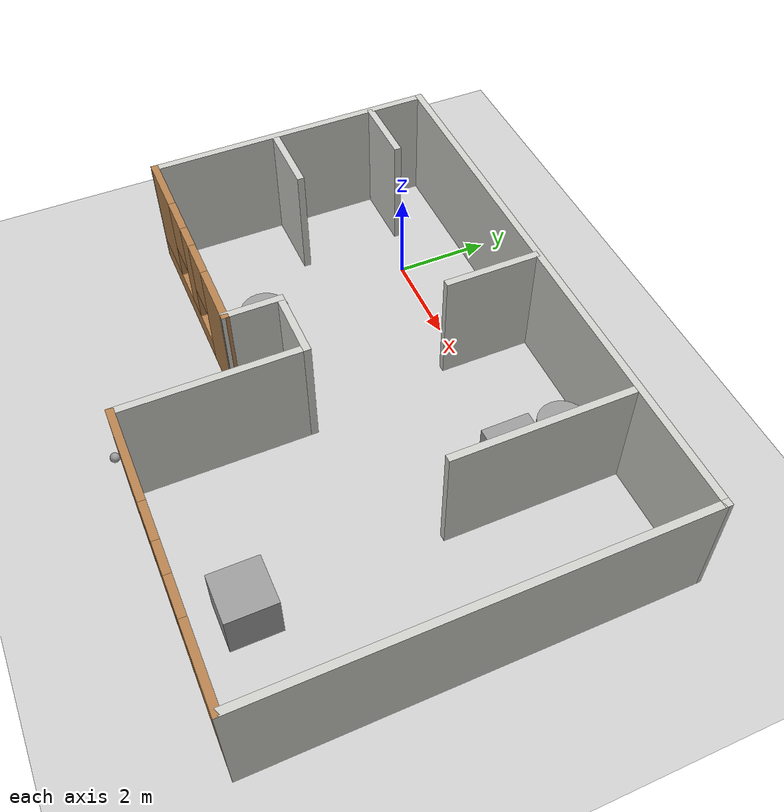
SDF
<sdf version="1.6">
 <world name="default">
  <plugin name="hello" filename="libhello.so"/>
  <light name="sun" type="directional">
   <pose>0 0 10 0 -0 0</pose>
   <diffuse>0.8 0.8 0.8 1</diffuse>
   <specular>0.2 0.2 0.2 1</specular>
   <attenuation>
    <range>1000</range>
    <constant>0.9</constant>
    <linear>0.01</linear>
    <quadratic>0.001</quadratic>
   </attenuation>
   <direction>-0.5 0.1 -0.9</direction>
  </light>
  <model name="ground_plane">
   <static>1</static>
   <link name="link">
    <collision name="collision">
     <geometry><plane><normal>0 0 1</normal><size>100 100</size></plane></geometry>
     <surface><friction><ode><mu>100</mu><mu2>50</mu2></ode></friction></surface>
    </collision>
    <visual name="visual">
     <cast_shadows>0</cast_shadows>
     <geometry><plane><normal>0 0 1</normal><size>100 100</size></plane></geometry>
     <material>
      <script><uri>file://media/materials/scripts/gazebo.material</uri><name>Gazebo/Grey</name></script>
     </material>
    </visual>
   </link>
  </model>
  <gravity>0 0 -9.8</gravity>
  <magnetic_field>6e-06 2.3e-05 -4.2e-05</magnetic_field>
  <atmosphere type="adiabatic"/>
  <physics name="default_physics" default="0" type="ode">
   <max_step_size>0.001</max_step_size>
   <real_time_factor>1</real_time_factor>
   <real_time_update_rate>1000</real_time_update_rate>
  </physics>
  <scene><ambient>0.4 0.4 0.4 1</ambient><background>0.7 0.7 0.7 1</background><shadows>1</shadows></scene>
  <spherical_coordinates>
   <surface_model>EARTH_WGS84</surface_model>
   <latitude_deg>0</latitude_deg>
   <longitude_deg>0</longitude_deg>
   <elevation>0</elevation>
   <heading_deg>0</heading_deg>
  </spherical_coordinates>
  <model name="my_ball">
   <link name="link_0">
    <inertial>
     <mass>1</mass>
     <inertia><ixx>0.1</ixx><ixy>0</ixy><ixz>0</ixz><iyy>0.1</iyy><iyz>0</iyz><izz>0.1</izz></inertia>
    </inertial>
    <visual name="visual">
     <geometry><sphere><radius>0.1</radius></sphere></geometry>
     <material>
      <lighting>1</lighting>
      <script><uri>file://media/materials/scripts/gazebo.material</uri><name>Gazebo/Grey</name></script>
      <ambient>1 1 1 1</ambient>
      <diffuse>1 1 1 1</diffuse>
      <specular>1 1 1 1</specular>
      <emissive>1 1 1 1</emissive>
      <shader type="vertex"><normal_map>__default__</normal_map></shader>
     </material>
    </visual>
    <collision name="collision">
     <geometry><sphere><radius>0.1</radius></sphere></geometry>
     <surface>
      <friction>
       <ode><mu>1</mu><mu2>1</mu2><fdir1>0 0 0</fdir1><slip1>0</slip1><slip2>0</slip2></ode>
       <torsional>
        <coefficient>1</coefficient>
        <patch_radius>0</patch_radius>
        <surface_radius>0</surface_radius>
        <use_patch_radius>1</use_patch_radius>
        <ode><slip>0</slip></ode>
       </torsional>
      </friction>
      <bounce><restitution_coefficient>0</restitution_coefficient><threshold>1e+06</threshold></bounce>
      <contact>
       <collide_without_contact>0</collide_without_contact>
       <collide_without_contact_bitmask>1</collide_without_contact_bitmask>
       <collide_bitmask>1</collide_bitmask>
       <ode>
        <soft_cfm>0</soft_cfm>
        <soft_erp>0.2</soft_erp>
        <kp>1e+13</kp>
        <kd>1</kd>
        <max_vel>0.01</max_vel>
        <min_depth>0</min_depth>
       </ode>
       <bullet>
        <split_impulse>1</split_impulse>
        <split_impulse_penetration_threshold>-0.01</split_impulse_penetration_threshold>
        <soft_cfm>0</soft_cfm>
        <soft_erp>0.2</soft_erp>
        <kp>1e+13</kp>
        <kd>1</kd>
       </bullet>
      </contact>
     </surface>
    </collision>
   </link>
   <static>0</static>
   <pose>2.51322 -7.20324 0.1 0 -0 0</pose>
  </model>
  <model name="Building">
   <link name="Wall_26">
    <pose>-0.000176 4.29996 0 0 0 -0.000586</pose>
    <visual name="Wall_26_Visual">
     <pose>0 0 1.25 0 -0 0</pose>
     <geometry><box><size>11.9548 0.15 2.5</size></box></geometry>
     <material>
      <script><uri>file://media/materials/scripts/gazebo.material</uri><name>Gazebo/CeilingTiled</name></script>
      <ambient>1 1 1 1</ambient>
      <shader type="pixel"/>
      <diffuse>1 1 1 1</diffuse>
      <specular>0 0 0 1</specular>
      <emissive>0 0 0 1</emissive>
     </material>
     <meta><layer>0</layer></meta>
    </visual>
    <collision name="Wall_26_Collision">
     <pose>0 0 1.25 0 -0 0</pose>
     <geometry><box><size>11.9548 0.15 2.5</size></box></geometry>
     <surface>
      <friction>
       <ode><mu>1</mu><mu2>1</mu2><fdir1>0 0 0</fdir1><slip1>0</slip1><slip2>0</slip2></ode>
       <torsional>
        <coefficient>1</coefficient>
        <patch_radius>0</patch_radius>
        <surface_radius>0</surface_radius>
        <use_patch_radius>1</use_patch_radius>
        <ode><slip>0</slip></ode>
       </torsional>
      </friction>
      <bounce><restitution_coefficient>0</restitution_coefficient><threshold>1e+06</threshold></bounce>
      <contact>
       <collide_without_contact>0</collide_without_contact>
       <collide_without_contact_bitmask>1</collide_without_contact_bitmask>
       <collide_bitmask>1</collide_bitmask>
       <ode>
        <soft_cfm>0</soft_cfm>
        <soft_erp>0.2</soft_erp>
        <kp>1e+13</kp>
        <kd>1</kd>
        <max_vel>0.01</max_vel>
        <min_depth>0</min_depth>
       </ode>
       <bullet>
        <split_impulse>1</split_impulse>
        <split_impulse_penetration_threshold>-0.01</split_impulse_penetration_threshold>
        <soft_cfm>0</soft_cfm>
        <soft_erp>0.2</soft_erp>
        <kp>1e+13</kp>
        <kd>1</kd>
       </bullet>
      </contact>
     </surface>
    </collision>
   </link>
   <link name="Wall_27">
    <pose>5.90246 -0.003458 0 0 0 -1.57074</pose>
    <visual name="Wall_27_Visual">
     <pose>0 0 1.25 0 -0 0</pose>
     <geometry><box><size>8.75 0.15 2.5</size></box></geometry>
     <material>
      <script><uri>file://media/materials/scripts/gazebo.material</uri><name>Gazebo/CeilingTiled</name></script>
      <ambient>1 1 1 1</ambient>
      <shader type="pixel"/>
      <diffuse>1 1 1 1</diffuse>
      <specular>0 0 0 1</specular>
      <emissive>0 0 0 1</emissive>
     </material>
     <meta><layer>0</layer></meta>
    </visual>
    <collision name="Wall_27_Collision">
     <pose>0 0 1.25 0 -0 0</pose>
     <geometry><box><size>8.75 0.15 2.5</size></box></geometry>
     <surface>
      <friction>
       <ode><mu>1</mu><mu2>1</mu2><fdir1>0 0 0</fdir1><slip1>0</slip1><slip2>0</slip2></ode>
       <torsional>
        <coefficient>1</coefficient>
        <patch_radius>0</patch_radius>
        <surface_radius>0</surface_radius>
        <use_patch_radius>1</use_patch_radius>
        <ode><slip>0</slip></ode>
       </torsional>
      </friction>
      <bounce><restitution_coefficient>0</restitution_coefficient><threshold>1e+06</threshold></bounce>
      <contact>
       <collide_without_contact>0</collide_without_contact>
       <collide_without_contact_bitmask>1</collide_without_contact_bitmask>
       <collide_bitmask>1</collide_bitmask>
       <ode>
        <soft_cfm>0</soft_cfm>
        <soft_erp>0.2</soft_erp>
        <kp>1e+13</kp>
        <kd>1</kd>
        <max_vel>0.01</max_vel>
        <min_depth>0</min_depth>
       </ode>
       <bullet>
        <split_impulse>1</split_impulse>
        <split_impulse_penetration_threshold>-0.01</split_impulse_penetration_threshold>
        <soft_cfm>0</soft_cfm>
        <soft_erp>0.2</soft_erp>
        <kp>1e+13</kp>
        <kd>1</kd>
       </bullet>
      </contact>
     </surface>
    </collision>
   </link>
   <link name="Wall_28">
    <pose>2.97769 -4.30342 0 0 -0 3.14159</pose>
    <visual name="Wall_28_Visual_0">
     <pose>-2.16132 0 1.25 0 -0 0</pose>
     <geometry><box><size>1.67735 0.15 2.5</size></box></geometry>
     <material>
      <script><uri>file://media/materials/scripts/gazebo.material</uri><name>Gazebo/Wood</name></script>
      <ambient>1 1 1 1</ambient>
      <shader type="pixel"/>
      <diffuse>1 1 1 1</diffuse>
      <specular>0.2 0.2 0.2 1</specular>
      <emissive>0 0 0 1</emissive>
     </material>
     <meta><layer>0</layer></meta>
    </visual>
    <visual name="Wall_28_Visual_1">
     <pose>0.838676 0 0.25 0 -0 0</pose>
     <geometry><box><size>4.32265 0.15 0.5</size></box></geometry>
     <material>
      <script><uri>file://media/materials/scripts/gazebo.material</uri><name>Gazebo/Wood</name></script>
      <ambient>1 1 1 1</ambient>
      <shader type="pixel"/>
      <diffuse>1 1 1 1</diffuse>
      <specular>0.2 0.2 0.2 1</specular>
      <emissive>0 0 0 1</emissive>
     </material>
     <meta><layer>0</layer></meta>
    </visual>
    <visual name="Wall_28_Visual_2">
     <pose>-0.194936 0 1.5 0 -0 0</pose>
     <geometry><box><size>0.655424 0.15 2</size></box></geometry>
     <material>
      <script><uri>file://media/materials/scripts/gazebo.material</uri><name>Gazebo/Wood</name></script>
      <ambient>1 1 1 1</ambient>
      <shader type="pixel"/>
      <diffuse>1 1 1 1</diffuse>
      <specular>0.2 0.2 0.2 1</specular>
      <emissive>0 0 0 1</emissive>
     </material>
     <meta><layer>0</layer></meta>
    </visual>
    <visual name="Wall_28_Visual_3">
     <pose>1.96639 0 1.5 0 -0 0</pose>
     <geometry><box><size>2.06722 0.15 2</size></box></geometry>
     <material>
      <script><uri>file://media/materials/scripts/gazebo.material</uri><name>Gazebo/Wood</name></script>
      <ambient>1 1 1 1</ambient>
      <shader type="pixel"/>
      <diffuse>1 1 1 1</diffuse>
      <specular>0.2 0.2 0.2 1</specular>
      <emissive>0 0 0 1</emissive>
     </material>
     <meta><layer>0</layer></meta>
    </visual>
    <visual name="Wall_28_Visual_4">
     <pose>-0.922648 0 1.9 0 -0 0</pose>
     <geometry><box><size>0.8 0.15 1.2</size></box></geometry>
     <material>
      <script><uri>file://media/materials/scripts/gazebo.material</uri><name>Gazebo/Wood</name></script>
      <ambient>1 1 1 1</ambient>
      <shader type="pixel"/>
      <diffuse>1 1 1 1</diffuse>
      <specular>0.2 0.2 0.2 1</specular>
      <emissive>0 0 0 1</emissive>
     </material>
     <meta><layer>0</layer></meta>
    </visual>
    <visual name="Wall_28_Visual_5">
     <pose>0.532776 0 1.9 0 -0 0</pose>
     <geometry><box><size>0.8 0.15 1.2</size></box></geometry>
     <material>
      <script><uri>file://media/materials/scripts/gazebo.material</uri><name>Gazebo/Wood</name></script>
      <ambient>1 1 1 1</ambient>
      <shader type="pixel"/>
      <diffuse>1 1 1 1</diffuse>
      <specular>0.2 0.2 0.2 1</specular>
      <emissive>0 0 0 1</emissive>
     </material>
     <meta><layer>0</layer></meta>
    </visual>
    <collision name="Wall_28_Collision_0">
     <pose>-2.16132 0 1.25 0 -0 0</pose>
     <geometry><box><size>1.67735 0.15 2.5</size></box></geometry>
     <surface>
      <friction>
       <ode><mu>1</mu><mu2>1</mu2><fdir1>0 0 0</fdir1><slip1>0</slip1><slip2>0</slip2></ode>
       <torsional>
        <coefficient>1</coefficient>
        <patch_radius>0</patch_radius>
        <surface_radius>0</surface_radius>
        <use_patch_radius>1</use_patch_radius>
        <ode><slip>0</slip></ode>
       </torsional>
      </friction>
      <bounce><restitution_coefficient>0</restitution_coefficient><threshold>1e+06</threshold></bounce>
      <contact>
       <collide_without_contact>0</collide_without_contact>
       <collide_without_contact_bitmask>1</collide_without_contact_bitmask>
       <collide_bitmask>1</collide_bitmask>
       <ode>
        <soft_cfm>0</soft_cfm>
        <soft_erp>0.2</soft_erp>
        <kp>1e+13</kp>
        <kd>1</kd>
        <max_vel>0.01</max_vel>
        <min_depth>0</min_depth>
       </ode>
       <bullet>
        <split_impulse>1</split_impulse>
        <split_impulse_penetration_threshold>-0.01</split_impulse_penetration_threshold>
        <soft_cfm>0</soft_cfm>
        <soft_erp>0.2</soft_erp>
        <kp>1e+13</kp>
        <kd>1</kd>
       </bullet>
      </contact>
     </surface>
    </collision>
    <collision name="Wall_28_Collision_1">
     <pose>0.838676 0 0.25 0 -0 0</pose>
     <geometry><box><size>4.32265 0.15 0.5</size></box></geometry>
     <surface>
      <friction>
       <ode><mu>1</mu><mu2>1</mu2><fdir1>0 0 0</fdir1><slip1>0</slip1><slip2>0</slip2></ode>
       <torsional>
        <coefficient>1</coefficient>
        <patch_radius>0</patch_radius>
        <surface_radius>0</surface_radius>
        <use_patch_radius>1</use_patch_radius>
        <ode><slip>0</slip></ode>
       </torsional>
      </friction>
      <bounce><restitution_coefficient>0</restitution_coefficient><threshold>1e+06</threshold></bounce>
      <contact>
       <collide_without_contact>0</collide_without_contact>
       <collide_without_contact_bitmask>1</collide_without_contact_bitmask>
       <collide_bitmask>1</collide_bitmask>
       <ode>
        <soft_cfm>0</soft_cfm>
        <soft_erp>0.2</soft_erp>
        <kp>1e+13</kp>
        <kd>1</kd>
        <max_vel>0.01</max_vel>
        <min_depth>0</min_depth>
       </ode>
       <bullet>
        <split_impulse>1</split_impulse>
        <split_impulse_penetration_threshold>-0.01</split_impulse_penetration_threshold>
        <soft_cfm>0</soft_cfm>
        <soft_erp>0.2</soft_erp>
        <kp>1e+13</kp>
        <kd>1</kd>
       </bullet>
      </contact>
     </surface>
    </collision>
    <collision name="Wall_28_Collision_3">
     <pose>1.96639 0 1.5 0 -0 0</pose>
     <geometry><box><size>2.06722 0.15 2</size></box></geometry>
     <surface>
      <friction>
       <ode><mu>1</mu><mu2>1</mu2><fdir1>0 0 0</fdir1><slip1>0</slip1><slip2>0</slip2></ode>
       <torsional>
        <coefficient>1</coefficient>
        <patch_radius>0</patch_radius>
        <surface_radius>0</surface_radius>
        <use_patch_radius>1</use_patch_radius>
        <ode><slip>0</slip></ode>
       </torsional>
      </friction>
      <bounce><restitution_coefficient>0</restitution_coefficient><threshold>1e+06</threshold></bounce>
      <contact>
       <collide_without_contact>0</collide_without_contact>
       <collide_without_contact_bitmask>1</collide_without_contact_bitmask>
       <collide_bitmask>1</collide_bitmask>
       <ode>
        <soft_cfm>0</soft_cfm>
        <soft_erp>0.2</soft_erp>
        <kp>1e+13</kp>
        <kd>1</kd>
        <max_vel>0.01</max_vel>
        <min_depth>0</min_depth>
       </ode>
       <bullet>
        <split_impulse>1</split_impulse>
        <split_impulse_penetration_threshold>-0.01</split_impulse_penetration_threshold>
        <soft_cfm>0</soft_cfm>
        <soft_erp>0.2</soft_erp>
        <kp>1e+13</kp>
        <kd>1</kd>
       </bullet>
      </contact>
     </surface>
    </collision>
    <collision name="Wall_28_Collision_2">
     <pose>-0.194936 0 1.5 0 -0 0</pose>
     <geometry><box><size>0.655424 0.15 2</size></box></geometry>
     <surface>
      <friction>
       <ode><mu>1</mu><mu2>1</mu2><fdir1>0 0 0</fdir1><slip1>0</slip1><slip2>0</slip2></ode>
       <torsional>
        <coefficient>1</coefficient>
        <patch_radius>0</patch_radius>
        <surface_radius>0</surface_radius>
        <use_patch_radius>1</use_patch_radius>
        <ode><slip>0</slip></ode>
       </torsional>
      </friction>
      <bounce><restitution_coefficient>0</restitution_coefficient><threshold>1e+06</threshold></bounce>
      <contact>
       <collide_without_contact>0</collide_without_contact>
       <collide_without_contact_bitmask>1</collide_without_contact_bitmask>
       <collide_bitmask>1</collide_bitmask>
       <ode>
        <soft_cfm>0</soft_cfm>
        <soft_erp>0.2</soft_erp>
        <kp>1e+13</kp>
        <kd>1</kd>
        <max_vel>0.01</max_vel>
        <min_depth>0</min_depth>
       </ode>
       <bullet>
        <split_impulse>1</split_impulse>
        <split_impulse_penetration_threshold>-0.01</split_impulse_penetration_threshold>
        <soft_cfm>0</soft_cfm>
        <soft_erp>0.2</soft_erp>
        <kp>1e+13</kp>
        <kd>1</kd>
       </bullet>
      </contact>
     </surface>
    </collision>
    <collision name="Wall_28_Collision_4">
     <pose>-0.922648 0 1.9 0 -0 0</pose>
     <geometry><box><size>0.8 0.15 1.2</size></box></geometry>
     <surface>
      <friction>
       <ode><mu>1</mu><mu2>1</mu2><fdir1>0 0 0</fdir1><slip1>0</slip1><slip2>0</slip2></ode>
       <torsional>
        <coefficient>1</coefficient>
        <patch_radius>0</patch_radius>
        <surface_radius>0</surface_radius>
        <use_patch_radius>1</use_patch_radius>
        <ode><slip>0</slip></ode>
       </torsional>
      </friction>
      <bounce><restitution_coefficient>0</restitution_coefficient><threshold>1e+06</threshold></bounce>
      <contact>
       <collide_without_contact>0</collide_without_contact>
       <collide_without_contact_bitmask>1</collide_without_contact_bitmask>
       <collide_bitmask>1</collide_bitmask>
       <ode>
        <soft_cfm>0</soft_cfm>
        <soft_erp>0.2</soft_erp>
        <kp>1e+13</kp>
        <kd>1</kd>
        <max_vel>0.01</max_vel>
        <min_depth>0</min_depth>
       </ode>
       <bullet>
        <split_impulse>1</split_impulse>
        <split_impulse_penetration_threshold>-0.01</split_impulse_penetration_threshold>
        <soft_cfm>0</soft_cfm>
        <soft_erp>0.2</soft_erp>
        <kp>1e+13</kp>
        <kd>1</kd>
       </bullet>
      </contact>
     </surface>
    </collision>
    <collision name="Wall_28_Collision_5">
     <pose>0.532776 0 1.9 0 -0 0</pose>
     <geometry><box><size>0.8 0.15 1.2</size></box></geometry>
     <surface>
      <friction>
       <ode><mu>1</mu><mu2>1</mu2><fdir1>0 0 0</fdir1><slip1>0</slip1><slip2>0</slip2></ode>
       <torsional>
        <coefficient>1</coefficient>
        <patch_radius>0</patch_radius>
        <surface_radius>0</surface_radius>
        <use_patch_radius>1</use_patch_radius>
        <ode><slip>0</slip></ode>
       </torsional>
      </friction>
      <bounce><restitution_coefficient>0</restitution_coefficient><threshold>1e+06</threshold></bounce>
      <contact>
       <collide_without_contact>0</collide_without_contact>
       <collide_without_contact_bitmask>1</collide_without_contact_bitmask>
       <collide_bitmask>1</collide_bitmask>
       <ode>
        <soft_cfm>0</soft_cfm>
        <soft_erp>0.2</soft_erp>
        <kp>1e+13</kp>
        <kd>1</kd>
        <max_vel>0.01</max_vel>
        <min_depth>0</min_depth>
       </ode>
       <bullet>
        <split_impulse>1</split_impulse>
        <split_impulse_penetration_threshold>-0.01</split_impulse_penetration_threshold>
        <soft_cfm>0</soft_cfm>
        <soft_erp>0.2</soft_erp>
        <kp>1e+13</kp>
        <kd>1</kd>
       </bullet>
      </contact>
     </surface>
    </collision>
   </link>
   <link name="Wall_29">
    <pose>0.052686 -2.50342 0 0 -0 1.5708</pose>
    <visual name="Wall_29_Visual">
     <pose>0 0 1.25 0 -0 0</pose>
     <geometry><box><size>3.75 0.15 2.5</size></box></geometry>
     <material>
      <script><uri>file://media/materials/scripts/gazebo.material</uri><name>Gazebo/CeilingTiled</name></script>
      <ambient>1 1 1 1</ambient>
      <shader type="pixel"/>
      <diffuse>1 1 1 1</diffuse>
      <specular>0 0 0 1</specular>
      <emissive>0 0 0 1</emissive>
     </material>
     <meta><layer>0</layer></meta>
    </visual>
    <collision name="Wall_29_Collision">
     <pose>0 0 1.25 0 -0 0</pose>
     <geometry><box><size>3.75 0.15 2.5</size></box></geometry>
     <surface>
      <friction>
       <ode><mu>1</mu><mu2>1</mu2><fdir1>0 0 0</fdir1><slip1>0</slip1><slip2>0</slip2></ode>
       <torsional>
        <coefficient>1</coefficient>
        <patch_radius>0</patch_radius>
        <surface_radius>0</surface_radius>
        <use_patch_radius>1</use_patch_radius>
        <ode><slip>0</slip></ode>
       </torsional>
      </friction>
      <bounce><restitution_coefficient>0</restitution_coefficient><threshold>1e+06</threshold></bounce>
      <contact>
       <collide_without_contact>0</collide_without_contact>
       <collide_without_contact_bitmask>1</collide_without_contact_bitmask>
       <collide_bitmask>1</collide_bitmask>
       <ode>
        <soft_cfm>0</soft_cfm>
        <soft_erp>0.2</soft_erp>
        <kp>1e+13</kp>
        <kd>1</kd>
        <max_vel>0.01</max_vel>
        <min_depth>0</min_depth>
       </ode>
       <bullet>
        <split_impulse>1</split_impulse>
        <split_impulse_penetration_threshold>-0.01</split_impulse_penetration_threshold>
        <soft_cfm>0</soft_cfm>
        <soft_erp>0.2</soft_erp>
        <kp>1e+13</kp>
        <kd>1</kd>
       </bullet>
      </contact>
     </surface>
    </collision>
   </link>
   <link name="Wall_29_clone">
    <pose>3.29377 2.43473 0 0 -0 1.5708</pose>
    <visual name="Wall_29_Visual">
     <pose>0 0 1.25 0 -0 0</pose>
     <geometry><box><size>3.75 0.15 2.5</size></box></geometry>
     <material>
      <script><uri>file://media/materials/scripts/gazebo.material</uri><name>Gazebo/CeilingTiled</name></script>
      <ambient>1 1 1 1</ambient>
      <shader type="pixel"/>
      <diffuse>1 1 1 1</diffuse>
      <specular>0 0 0 1</specular>
      <emissive>0 0 0 1</emissive>
     </material>
     <meta><layer>0</layer></meta>
    </visual>
    <collision name="Wall_29_Collision">
     <pose>0 0 1.25 0 -0 0</pose>
     <geometry><box><size>3.75 0.15 2.5</size></box></geometry>
     <surface>
      <friction>
       <ode><mu>1</mu><mu2>1</mu2><fdir1>0 0 0</fdir1><slip1>0</slip1><slip2>0</slip2></ode>
       <torsional>
        <coefficient>1</coefficient>
        <patch_radius>0</patch_radius>
        <surface_radius>0</surface_radius>
        <use_patch_radius>1</use_patch_radius>
        <ode><slip>0</slip></ode>
       </torsional>
      </friction>
      <bounce><restitution_coefficient>0</restitution_coefficient><threshold>1e+06</threshold></bounce>
      <contact>
       <collide_without_contact>0</collide_without_contact>
       <collide_without_contact_bitmask>1</collide_without_contact_bitmask>
       <collide_bitmask>1</collide_bitmask>
       <ode>
        <soft_cfm>0</soft_cfm>
        <soft_erp>0.2</soft_erp>
        <kp>1e+13</kp>
        <kd>1</kd>
        <max_vel>0.01</max_vel>
        <min_depth>0</min_depth>
       </ode>
       <bullet>
        <split_impulse>1</split_impulse>
        <split_impulse_penetration_threshold>-0.01</split_impulse_penetration_threshold>
        <soft_cfm>0</soft_cfm>
        <soft_erp>0.2</soft_erp>
        <kp>1e+13</kp>
        <kd>1</kd>
       </bullet>
      </contact>
     </surface>
    </collision>
   </link>
   <link name="Wall_29_clone_clone">
    <pose>-0.384096 3.3 0 0 -0 1.5708</pose>
    <inertial>
     <mass>1</mass>
     <inertia><ixx>1</ixx><ixy>0</ixy><ixz>0</ixz><iyy>1</iyy><iyz>0</iyz><izz>1</izz></inertia>
    </inertial>
    <visual name="Wall_29_Visual">
     <pose>0 0 1.25 0 -0 0</pose>
     <geometry><box><size>2 0.15 2.5</size></box></geometry>
     <material>
      <script><uri>file://media/materials/scripts/gazebo.material</uri><name>Gazebo/CeilingTiled</name></script>
      <ambient>1 1 1 1</ambient>
      <shader type="pixel"><normal_map>__default__</normal_map></shader>
      <diffuse>1 1 1 1</diffuse>
      <specular>0 0 0 1</specular>
      <emissive>0 0 0 1</emissive>
     </material>
     <meta><layer>0</layer></meta>
    </visual>
    <collision name="Wall_29_Collision">
     <pose>0 0 1.25 0 -0 0</pose>
     <geometry><box><size>2 0.15 2.5</size></box></geometry>
     <surface>
      <friction>
       <ode><mu>1</mu><mu2>1</mu2><fdir1>0 0 0</fdir1><slip1>0</slip1><slip2>0</slip2></ode>
       <torsional>
        <coefficient>1</coefficient>
        <patch_radius>0</patch_radius>
        <surface_radius>0</surface_radius>
        <use_patch_radius>1</use_patch_radius>
        <ode><slip>0</slip></ode>
       </torsional>
      </friction>
      <bounce><restitution_coefficient>0</restitution_coefficient><threshold>1e+06</threshold></bounce>
      <contact>
       <collide_without_contact>0</collide_without_contact>
       <collide_without_contact_bitmask>1</collide_without_contact_bitmask>
       <collide_bitmask>1</collide_bitmask>
       <ode>
        <soft_cfm>0</soft_cfm>
        <soft_erp>0.2</soft_erp>
        <kp>1e+13</kp>
        <kd>1</kd>
        <max_vel>0.01</max_vel>
        <min_depth>0</min_depth>
       </ode>
       <bullet>
        <split_impulse>1</split_impulse>
        <split_impulse_penetration_threshold>-0.01</split_impulse_penetration_threshold>
        <soft_cfm>0</soft_cfm>
        <soft_erp>0.2</soft_erp>
        <kp>1e+13</kp>
        <kd>1</kd>
       </bullet>
      </contact>
     </surface>
    </collision>
   </link>
   <link name="Wall_30">
    <pose>-0.622313 -0.703418 0 0 -0 3.14159</pose>
    <visual name="Wall_30_Visual">
     <pose>0 0 1.25 0 -0 0</pose>
     <geometry><box><size>1.5 0.15 2.5</size></box></geometry>
     <material>
      <script><uri>file://media/materials/scripts/gazebo.material</uri><name>Gazebo/CeilingTiled</name></script>
      <ambient>1 1 1 1</ambient>
      <shader type="pixel"/>
      <diffuse>1 1 1 1</diffuse>
      <specular>0 0 0 1</specular>
      <emissive>0 0 0 1</emissive>
     </material>
     <meta><layer>0</layer></meta>
    </visual>
    <collision name="Wall_30_Collision">
     <pose>0 0 1.25 0 -0 0</pose>
     <geometry><box><size>1.5 0.15 2.5</size></box></geometry>
     <surface>
      <friction>
       <ode><mu>1</mu><mu2>1</mu2><fdir1>0 0 0</fdir1><slip1>0</slip1><slip2>0</slip2></ode>
       <torsional>
        <coefficient>1</coefficient>
        <patch_radius>0</patch_radius>
        <surface_radius>0</surface_radius>
        <use_patch_radius>1</use_patch_radius>
        <ode><slip>0</slip></ode>
       </torsional>
      </friction>
      <bounce><restitution_coefficient>0</restitution_coefficient><threshold>1e+06</threshold></bounce>
      <contact>
       <collide_without_contact>0</collide_without_contact>
       <collide_without_contact_bitmask>1</collide_without_contact_bitmask>
       <collide_bitmask>1</collide_bitmask>
       <ode>
        <soft_cfm>0</soft_cfm>
        <soft_erp>0.2</soft_erp>
        <kp>1e+13</kp>
        <kd>1</kd>
        <max_vel>0.01</max_vel>
        <min_depth>0</min_depth>
       </ode>
       <bullet>
        <split_impulse>1</split_impulse>
        <split_impulse_penetration_threshold>-0.01</split_impulse_penetration_threshold>
        <soft_cfm>0</soft_cfm>
        <soft_erp>0.2</soft_erp>
        <kp>1e+13</kp>
        <kd>1</kd>
       </bullet>
      </contact>
     </surface>
    </collision>
   </link>
   <link name="Wall_30_clone">
    <pose>-5.08821 0.870186 0 0 -0 3.14159</pose>
    <visual name="Wall_30_Visual">
     <pose>0 0 1.25 0 -0 0</pose>
     <geometry><box><size>1.5 0.15 2.5</size></box></geometry>
     <material>
      <script><uri>file://media/materials/scripts/gazebo.material</uri><name>Gazebo/CeilingTiled</name></script>
      <ambient>1 1 1 1</ambient>
      <shader type="pixel"/>
      <diffuse>1 1 1 1</diffuse>
      <specular>0 0 0 1</specular>
      <emissive>0 0 0 1</emissive>
     </material>
     <meta><layer>0</layer></meta>
    </visual>
    <collision name="Wall_30_Collision">
     <pose>0 0 1.25 0 -0 0</pose>
     <geometry><box><size>1.5 0.15 2.5</size></box></geometry>
     <surface>
      <friction>
       <ode><mu>1</mu><mu2>1</mu2><fdir1>0 0 0</fdir1><slip1>0</slip1><slip2>0</slip2></ode>
       <torsional>
        <coefficient>1</coefficient>
        <patch_radius>0</patch_radius>
        <surface_radius>0</surface_radius>
        <use_patch_radius>1</use_patch_radius>
        <ode><slip>0</slip></ode>
       </torsional>
      </friction>
      <bounce><restitution_coefficient>0</restitution_coefficient><threshold>1e+06</threshold></bounce>
      <contact>
       <collide_without_contact>0</collide_without_contact>
       <collide_without_contact_bitmask>1</collide_without_contact_bitmask>
       <collide_bitmask>1</collide_bitmask>
       <ode>
        <soft_cfm>0</soft_cfm>
        <soft_erp>0.2</soft_erp>
        <kp>1e+13</kp>
        <kd>1</kd>
        <max_vel>0.01</max_vel>
        <min_depth>0</min_depth>
       </ode>
       <bullet>
        <split_impulse>1</split_impulse>
        <split_impulse_penetration_threshold>-0.01</split_impulse_penetration_threshold>
        <soft_cfm>0</soft_cfm>
        <soft_erp>0.2</soft_erp>
        <kp>1e+13</kp>
        <kd>1</kd>
       </bullet>
      </contact>
     </surface>
    </collision>
   </link>
   <link name="Wall_30_clone_clone">
    <pose>-5.16149 3.11051 0 0 -0 3.14159</pose>
    <visual name="Wall_30_Visual">
     <pose>0 0 1.25 0 -0 0</pose>
     <geometry><box><size>1.5 0.15 2.5</size></box></geometry>
     <material>
      <script><uri>file://media/materials/scripts/gazebo.material</uri><name>Gazebo/CeilingTiled</name></script>
      <ambient>1 1 1 1</ambient>
      <shader type="pixel"/>
      <diffuse>1 1 1 1</diffuse>
      <specular>0 0 0 1</specular>
      <emissive>0 0 0 1</emissive>
     </material>
     <meta><layer>0</layer></meta>
    </visual>
    <collision name="Wall_30_Collision">
     <pose>0 0 1.25 0 -0 0</pose>
     <geometry><box><size>1.5 0.15 2.5</size></box></geometry>
     <surface>
      <friction>
       <ode><mu>1</mu><mu2>1</mu2><fdir1>0 0 0</fdir1><slip1>0</slip1><slip2>0</slip2></ode>
       <torsional>
        <coefficient>1</coefficient>
        <patch_radius>0</patch_radius>
        <surface_radius>0</surface_radius>
        <use_patch_radius>1</use_patch_radius>
        <ode><slip>0</slip></ode>
       </torsional>
      </friction>
      <bounce><restitution_coefficient>0</restitution_coefficient><threshold>1e+06</threshold></bounce>
      <contact>
       <collide_without_contact>0</collide_without_contact>
       <collide_without_contact_bitmask>1</collide_without_contact_bitmask>
       <collide_bitmask>1</collide_bitmask>
       <ode>
        <soft_cfm>0</soft_cfm>
        <soft_erp>0.2</soft_erp>
        <kp>1e+13</kp>
        <kd>1</kd>
        <max_vel>0.01</max_vel>
        <min_depth>0</min_depth>
       </ode>
       <bullet>
        <split_impulse>1</split_impulse>
        <split_impulse_penetration_threshold>-0.01</split_impulse_penetration_threshold>
        <soft_cfm>0</soft_cfm>
        <soft_erp>0.2</soft_erp>
        <kp>1e+13</kp>
        <kd>1</kd>
       </bullet>
      </contact>
     </surface>
    </collision>
   </link>
   <link name="Wall_31">
    <pose>-1.29731 -1.25342 0 0 0 -1.5708</pose>
    <visual name="Wall_31_Visual">
     <pose>0 0 1.25 0 -0 0</pose>
     <geometry><box><size>1.25 0.15 2.5</size></box></geometry>
     <material>
      <script><uri>file://media/materials/scripts/gazebo.material</uri><name>Gazebo/CeilingTiled</name></script>
      <ambient>1 1 1 1</ambient>
      <shader type="pixel"/>
      <diffuse>1 1 1 1</diffuse>
      <specular>0 0 0 1</specular>
      <emissive>0 0 0 1</emissive>
     </material>
     <meta><layer>0</layer></meta>
    </visual>
    <collision name="Wall_31_Collision">
     <pose>0 0 1.25 0 -0 0</pose>
     <geometry><box><size>1.25 0.15 2.5</size></box></geometry>
     <surface>
      <friction>
       <ode><mu>1</mu><mu2>1</mu2><fdir1>0 0 0</fdir1><slip1>0</slip1><slip2>0</slip2></ode>
       <torsional>
        <coefficient>1</coefficient>
        <patch_radius>0</patch_radius>
        <surface_radius>0</surface_radius>
        <use_patch_radius>1</use_patch_radius>
        <ode><slip>0</slip></ode>
       </torsional>
      </friction>
      <bounce><restitution_coefficient>0</restitution_coefficient><threshold>1e+06</threshold></bounce>
      <contact>
       <collide_without_contact>0</collide_without_contact>
       <collide_without_contact_bitmask>1</collide_without_contact_bitmask>
       <collide_bitmask>1</collide_bitmask>
       <ode>
        <soft_cfm>0</soft_cfm>
        <soft_erp>0.2</soft_erp>
        <kp>1e+13</kp>
        <kd>1</kd>
        <max_vel>0.01</max_vel>
        <min_depth>0</min_depth>
       </ode>
       <bullet>
        <split_impulse>1</split_impulse>
        <split_impulse_penetration_threshold>-0.01</split_impulse_penetration_threshold>
        <soft_cfm>0</soft_cfm>
        <soft_erp>0.2</soft_erp>
        <kp>1e+13</kp>
        <kd>1</kd>
       </bullet>
      </contact>
     </surface>
    </collision>
   </link>
   <link name="Wall_32">
    <pose>-3.59995 -1.8 0 0 -0 3.14011</pose>
    <visual name="Wall_32_Visual_0">
     <pose>-1.71646 0 1.25 0 -0 0</pose>
     <geometry><box><size>1.32235 0.15 2.5</size></box></geometry>
     <material>
      <script><uri>file://media/materials/scripts/gazebo.material</uri><name>Gazebo/Wood</name></script>
      <ambient>1 1 1 1</ambient>
      <shader type="pixel"/>
      <diffuse>1 1 1 1</diffuse>
      <specular>0.2 0.2 0.2 1</specular>
      <emissive>0 0 0 1</emissive>
     </material>
     <meta><layer>0</layer></meta>
    </visual>
    <visual name="Wall_32_Visual_1">
     <pose>0.661177 0 0.25 0 -0 0</pose>
     <geometry><box><size>3.43291 0.15 0.5</size></box></geometry>
     <material>
      <script><uri>file://media/materials/scripts/gazebo.material</uri><name>Gazebo/Wood</name></script>
      <ambient>1 1 1 1</ambient>
      <shader type="pixel"/>
      <diffuse>1 1 1 1</diffuse>
      <specular>0.2 0.2 0.2 1</specular>
      <emissive>0 0 0 1</emissive>
     </material>
     <meta><layer>0</layer></meta>
    </visual>
    <visual name="Wall_32_Visual_2">
     <pose>0.015645 0 1.5 0 -0 0</pose>
     <geometry><box><size>0.541852 0.15 2</size></box></geometry>
     <material>
      <script><uri>file://media/materials/scripts/gazebo.material</uri><name>Gazebo/Wood</name></script>
      <ambient>1 1 1 1</ambient>
      <shader type="pixel"/>
      <diffuse>1 1 1 1</diffuse>
      <specular>0.2 0.2 0.2 1</specular>
      <emissive>0 0 0 1</emissive>
     </material>
     <meta><layer>0</layer></meta>
    </visual>
    <visual name="Wall_32_Visual_3">
     <pose>1.7321 0 1.5 0 -0 0</pose>
     <geometry><box><size>1.29106 0.15 2</size></box></geometry>
     <material>
      <script><uri>file://media/materials/scripts/gazebo.material</uri><name>Gazebo/Wood</name></script>
      <ambient>1 1 1 1</ambient>
      <shader type="pixel"/>
      <diffuse>1 1 1 1</diffuse>
      <specular>0.2 0.2 0.2 1</specular>
      <emissive>0 0 0 1</emissive>
     </material>
     <meta><layer>0</layer></meta>
    </visual>
    <visual name="Wall_32_Visual_4">
     <pose>-0.655281 0 1.9 0 -0 0</pose>
     <geometry><box><size>0.8 0.15 1.2</size></box></geometry>
     <material>
      <script><uri>file://media/materials/scripts/gazebo.material</uri><name>Gazebo/Wood</name></script>
      <ambient>1 1 1 1</ambient>
      <shader type="pixel"/>
      <diffuse>1 1 1 1</diffuse>
      <specular>0.2 0.2 0.2 1</specular>
      <emissive>0 0 0 1</emissive>
     </material>
     <meta><layer>0</layer></meta>
    </visual>
    <visual name="Wall_32_Visual_5">
     <pose>0.686571 0 1.9 0 -0 0</pose>
     <geometry><box><size>0.8 0.15 1.2</size></box></geometry>
     <material>
      <script><uri>file://media/materials/scripts/gazebo.material</uri><name>Gazebo/Wood</name></script>
      <ambient>1 1 1 1</ambient>
      <shader type="pixel"/>
      <diffuse>1 1 1 1</diffuse>
      <specular>0.2 0.2 0.2 1</specular>
      <emissive>0 0 0 1</emissive>
     </material>
     <meta><layer>0</layer></meta>
    </visual>
    <collision name="Wall_32_Collision_0">
     <pose>-1.71646 0 1.25 0 -0 0</pose>
     <geometry><box><size>1.32235 0.15 2.5</size></box></geometry>
     <surface>
      <friction>
       <ode><mu>1</mu><mu2>1</mu2><fdir1>0 0 0</fdir1><slip1>0</slip1><slip2>0</slip2></ode>
       <torsional>
        <coefficient>1</coefficient>
        <patch_radius>0</patch_radius>
        <surface_radius>0</surface_radius>
        <use_patch_radius>1</use_patch_radius>
        <ode><slip>0</slip></ode>
       </torsional>
      </friction>
      <bounce><restitution_coefficient>0</restitution_coefficient><threshold>1e+06</threshold></bounce>
      <contact>
       <collide_without_contact>0</collide_without_contact>
       <collide_without_contact_bitmask>1</collide_without_contact_bitmask>
       <collide_bitmask>1</collide_bitmask>
       <ode>
        <soft_cfm>0</soft_cfm>
        <soft_erp>0.2</soft_erp>
        <kp>1e+13</kp>
        <kd>1</kd>
        <max_vel>0.01</max_vel>
        <min_depth>0</min_depth>
       </ode>
       <bullet>
        <split_impulse>1</split_impulse>
        <split_impulse_penetration_threshold>-0.01</split_impulse_penetration_threshold>
        <soft_cfm>0</soft_cfm>
        <soft_erp>0.2</soft_erp>
        <kp>1e+13</kp>
        <kd>1</kd>
       </bullet>
      </contact>
     </surface>
    </collision>
    <collision name="Wall_32_Collision_1">
     <pose>0.661177 0 0.25 0 -0 0</pose>
     <geometry><box><size>3.43291 0.15 0.5</size></box></geometry>
     <surface>
      <friction>
       <ode><mu>1</mu><mu2>1</mu2><fdir1>0 0 0</fdir1><slip1>0</slip1><slip2>0</slip2></ode>
       <torsional>
        <coefficient>1</coefficient>
        <patch_radius>0</patch_radius>
        <surface_radius>0</surface_radius>
        <use_patch_radius>1</use_patch_radius>
        <ode><slip>0</slip></ode>
       </torsional>
      </friction>
      <bounce><restitution_coefficient>0</restitution_coefficient><threshold>1e+06</threshold></bounce>
      <contact>
       <collide_without_contact>0</collide_without_contact>
       <collide_without_contact_bitmask>1</collide_without_contact_bitmask>
       <collide_bitmask>1</collide_bitmask>
       <ode>
        <soft_cfm>0</soft_cfm>
        <soft_erp>0.2</soft_erp>
        <kp>1e+13</kp>
        <kd>1</kd>
        <max_vel>0.01</max_vel>
        <min_depth>0</min_depth>
       </ode>
       <bullet>
        <split_impulse>1</split_impulse>
        <split_impulse_penetration_threshold>-0.01</split_impulse_penetration_threshold>
        <soft_cfm>0</soft_cfm>
        <soft_erp>0.2</soft_erp>
        <kp>1e+13</kp>
        <kd>1</kd>
       </bullet>
      </contact>
     </surface>
    </collision>
    <collision name="Wall_32_Collision_2">
     <pose>0.015645 0 1.5 0 -0 0</pose>
     <geometry><box><size>0.541852 0.15 2</size></box></geometry>
     <surface>
      <friction>
       <ode><mu>1</mu><mu2>1</mu2><fdir1>0 0 0</fdir1><slip1>0</slip1><slip2>0</slip2></ode>
       <torsional>
        <coefficient>1</coefficient>
        <patch_radius>0</patch_radius>
        <surface_radius>0</surface_radius>
        <use_patch_radius>1</use_patch_radius>
        <ode><slip>0</slip></ode>
       </torsional>
      </friction>
      <bounce><restitution_coefficient>0</restitution_coefficient><threshold>1e+06</threshold></bounce>
      <contact>
       <collide_without_contact>0</collide_without_contact>
       <collide_without_contact_bitmask>1</collide_without_contact_bitmask>
       <collide_bitmask>1</collide_bitmask>
       <ode>
        <soft_cfm>0</soft_cfm>
        <soft_erp>0.2</soft_erp>
        <kp>1e+13</kp>
        <kd>1</kd>
        <max_vel>0.01</max_vel>
        <min_depth>0</min_depth>
       </ode>
       <bullet>
        <split_impulse>1</split_impulse>
        <split_impulse_penetration_threshold>-0.01</split_impulse_penetration_threshold>
        <soft_cfm>0</soft_cfm>
        <soft_erp>0.2</soft_erp>
        <kp>1e+13</kp>
        <kd>1</kd>
       </bullet>
      </contact>
     </surface>
    </collision>
    <collision name="Wall_32_Collision_5">
     <pose>0.686571 0 1.9 0 -0 0</pose>
     <geometry><box><size>0.8 0.15 1.2</size></box></geometry>
     <surface>
      <friction>
       <ode><mu>1</mu><mu2>1</mu2><fdir1>0 0 0</fdir1><slip1>0</slip1><slip2>0</slip2></ode>
       <torsional>
        <coefficient>1</coefficient>
        <patch_radius>0</patch_radius>
        <surface_radius>0</surface_radius>
        <use_patch_radius>1</use_patch_radius>
        <ode><slip>0</slip></ode>
       </torsional>
      </friction>
      <bounce><restitution_coefficient>0</restitution_coefficient><threshold>1e+06</threshold></bounce>
      <contact>
       <collide_without_contact>0</collide_without_contact>
       <collide_without_contact_bitmask>1</collide_without_contact_bitmask>
       <collide_bitmask>1</collide_bitmask>
       <ode>
        <soft_cfm>0</soft_cfm>
        <soft_erp>0.2</soft_erp>
        <kp>1e+13</kp>
        <kd>1</kd>
        <max_vel>0.01</max_vel>
        <min_depth>0</min_depth>
       </ode>
       <bullet>
        <split_impulse>1</split_impulse>
        <split_impulse_penetration_threshold>-0.01</split_impulse_penetration_threshold>
        <soft_cfm>0</soft_cfm>
        <soft_erp>0.2</soft_erp>
        <kp>1e+13</kp>
        <kd>1</kd>
       </bullet>
      </contact>
     </surface>
    </collision>
    <collision name="Wall_32_Collision_4">
     <pose>-0.655281 0 1.9 0 -0 0</pose>
     <geometry><box><size>0.8 0.15 1.2</size></box></geometry>
     <surface>
      <friction>
       <ode><mu>1</mu><mu2>1</mu2><fdir1>0 0 0</fdir1><slip1>0</slip1><slip2>0</slip2></ode>
       <torsional>
        <coefficient>1</coefficient>
        <patch_radius>0</patch_radius>
        <surface_radius>0</surface_radius>
        <use_patch_radius>1</use_patch_radius>
        <ode><slip>0</slip></ode>
       </torsional>
      </friction>
      <bounce><restitution_coefficient>0</restitution_coefficient><threshold>1e+06</threshold></bounce>
      <contact>
       <collide_without_contact>0</collide_without_contact>
       <collide_without_contact_bitmask>1</collide_without_contact_bitmask>
       <collide_bitmask>1</collide_bitmask>
       <ode>
        <soft_cfm>0</soft_cfm>
        <soft_erp>0.2</soft_erp>
        <kp>1e+13</kp>
        <kd>1</kd>
        <max_vel>0.01</max_vel>
        <min_depth>0</min_depth>
       </ode>
       <bullet>
        <split_impulse>1</split_impulse>
        <split_impulse_penetration_threshold>-0.01</split_impulse_penetration_threshold>
        <soft_cfm>0</soft_cfm>
        <soft_erp>0.2</soft_erp>
        <kp>1e+13</kp>
        <kd>1</kd>
       </bullet>
      </contact>
     </surface>
    </collision>
    <collision name="Wall_32_Collision_3">
     <pose>1.7321 0 1.5 0 -0 0</pose>
     <geometry><box><size>1.29106 0.15 2</size></box></geometry>
     <surface>
      <friction>
       <ode><mu>1</mu><mu2>1</mu2><fdir1>0 0 0</fdir1><slip1>0</slip1><slip2>0</slip2></ode>
       <torsional>
        <coefficient>1</coefficient>
        <patch_radius>0</patch_radius>
        <surface_radius>0</surface_radius>
        <use_patch_radius>1</use_patch_radius>
        <ode><slip>0</slip></ode>
       </torsional>
      </friction>
      <bounce><restitution_coefficient>0</restitution_coefficient><threshold>1e+06</threshold></bounce>
      <contact>
       <collide_without_contact>0</collide_without_contact>
       <collide_without_contact_bitmask>1</collide_without_contact_bitmask>
       <collide_bitmask>1</collide_bitmask>
       <ode>
        <soft_cfm>0</soft_cfm>
        <soft_erp>0.2</soft_erp>
        <kp>1e+13</kp>
        <kd>1</kd>
        <max_vel>0.01</max_vel>
        <min_depth>0</min_depth>
       </ode>
       <bullet>
        <split_impulse>1</split_impulse>
        <split_impulse_penetration_threshold>-0.01</split_impulse_penetration_threshold>
        <soft_cfm>0</soft_cfm>
        <soft_erp>0.2</soft_erp>
        <kp>1e+13</kp>
        <kd>1</kd>
       </bullet>
      </contact>
     </surface>
    </collision>
   </link>
   <link name="Wall_33">
    <pose>-5.90258 1.25342 0 0 -0 1.5708</pose>
    <visual name="Wall_33_Visual">
     <pose>0 0 1.25 0 -0 0</pose>
     <geometry><box><size>6.25 0.15 2.5</size></box></geometry>
     <material>
      <script><uri>file://media/materials/scripts/gazebo.material</uri><name>Gazebo/CeilingTiled</name></script>
      <ambient>1 1 1 1</ambient>
      <shader type="pixel"/>
      <diffuse>1 1 1 1</diffuse>
      <specular>0 0 0 1</specular>
      <emissive>0 0 0 1</emissive>
     </material>
     <meta><layer>0</layer></meta>
    </visual>
    <collision name="Wall_33_Collision">
     <pose>0 0 1.25 0 -0 0</pose>
     <geometry><box><size>6.25 0.15 2.5</size></box></geometry>
     <surface>
      <friction>
       <ode><mu>1</mu><mu2>1</mu2><fdir1>0 0 0</fdir1><slip1>0</slip1><slip2>0</slip2></ode>
       <torsional>
        <coefficient>1</coefficient>
        <patch_radius>0</patch_radius>
        <surface_radius>0</surface_radius>
        <use_patch_radius>1</use_patch_radius>
        <ode><slip>0</slip></ode>
       </torsional>
      </friction>
      <bounce><restitution_coefficient>0</restitution_coefficient><threshold>1e+06</threshold></bounce>
      <contact>
       <collide_without_contact>0</collide_without_contact>
       <collide_without_contact_bitmask>1</collide_without_contact_bitmask>
       <collide_bitmask>1</collide_bitmask>
       <ode>
        <soft_cfm>0</soft_cfm>
        <soft_erp>0.2</soft_erp>
        <kp>1e+13</kp>
        <kd>1</kd>
        <max_vel>0.01</max_vel>
        <min_depth>0</min_depth>
       </ode>
       <bullet>
        <split_impulse>1</split_impulse>
        <split_impulse_penetration_threshold>-0.01</split_impulse_penetration_threshold>
        <soft_cfm>0</soft_cfm>
        <soft_erp>0.2</soft_erp>
        <kp>1e+13</kp>
        <kd>1</kd>
       </bullet>
      </contact>
     </surface>
    </collision>
   </link>
   <static>1</static>
   <pose>3.3411 -2.74153 0 0 -0 0</pose>
  </model>
  <model name="unit_cylinder">
   <pose>0.848169 -3.463 0.499991 0 -0 4e-06</pose>
   <link name="link">
    <inertial>
     <mass>1</mass>
     <inertia><ixx>0.145833</ixx><ixy>0</ixy><ixz>0</ixz><iyy>0.145833</iyy><iyz>0</iyz><izz>0.125</izz></inertia>
    </inertial>
    <collision name="collision">
     <geometry><cylinder><radius>0.5</radius><length>1</length></cylinder></geometry>
    </collision>
    <visual name="visual">
     <geometry><cylinder><radius>0.5</radius><length>1</length></cylinder></geometry>
     <material>
      <script><name>Gazebo/Grey</name><uri>file://media/materials/scripts/gazebo.material</uri></script>
     </material>
    </visual>
   </link>
  </model>
  <model name="unit_box">
   <pose>6.70565 -5.95661 0.499995 -1e-05 0 0</pose>
   <link name="link">
    <inertial>
     <mass>1</mass>
     <inertia>
      <ixx>0.166667</ixx>
      <ixy>0</ixy>
      <ixz>0</ixz>
      <iyy>0.166667</iyy>
      <iyz>0</iyz>
      <izz>0.166667</izz>
     </inertia>
    </inertial>
    <collision name="collision"><geometry><box><size>1 1 1</size></box></geometry></collision>
    <visual name="visual">
     <geometry><box><size>1 1 1</size></box></geometry>
     <material>
      <script><name>Gazebo/Grey</name><uri>file://media/materials/scripts/gazebo.material</uri></script>
     </material>
    </visual>
   </link>
  </model>
  <model name="unit_cylinder_0">
   <pose>5.81334 0.694675 0.499991 2e-06 -1e-06 -0.003898</pose>
   <link name="link">
    <inertial>
     <mass>1</mass>
     <inertia><ixx>0.145833</ixx><ixy>0</ixy><ixz>0</ixz><iyy>0.145833</iyy><iyz>0</iyz><izz>0.125</izz></inertia>
    </inertial>
    <collision name="collision">
     <geometry><cylinder><radius>0.5</radius><length>1</length></cylinder></geometry>
    </collision>
    <visual name="visual">
     <geometry><cylinder><radius>0.5</radius><length>1</length></cylinder></geometry>
     <material>
      <script><name>Gazebo/Grey</name><uri>file://media/materials/scripts/gazebo.material</uri></script>
     </material>
    </visual>
   </link>
  </model>
  <model name="unit_box_0">
   <pose>5.86876 -0.304868 0.5 0 -0 0.009171</pose>
   <link name="link">
    <inertial>
     <mass>1</mass>
     <inertia>
      <ixx>0.166667</ixx>
      <ixy>0</ixy>
      <ixz>0</ixz>
      <iyy>0.166667</iyy>
      <iyz>0</iyz>
      <izz>0.166667</izz>
     </inertia>
    </inertial>
    <collision name="collision"><geometry><box><size>1 1 1</size></box></geometry></collision>
    <visual name="visual">
     <geometry><box><size>1 1 1</size></box></geometry>
     <material>
      <script><name>Gazebo/Grey</name><uri>file://media/materials/scripts/gazebo.material</uri></script>
     </material>
    </visual>
   </link>
  </model>
  <plugin filename="libcollision_map_creator.so" name="collision_map_creator"/>
 </world>
</sdf>
